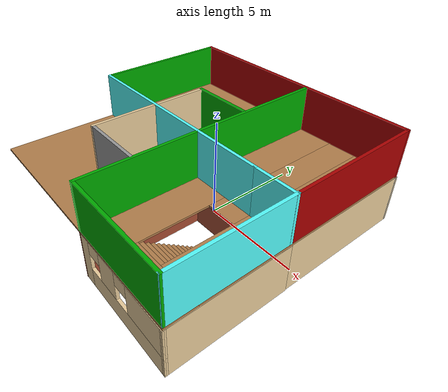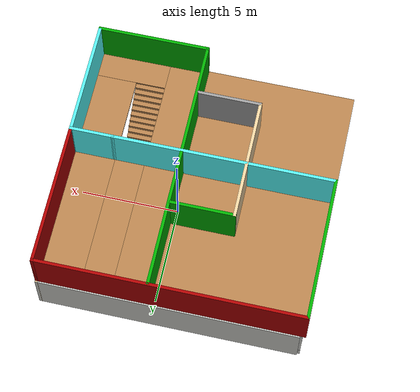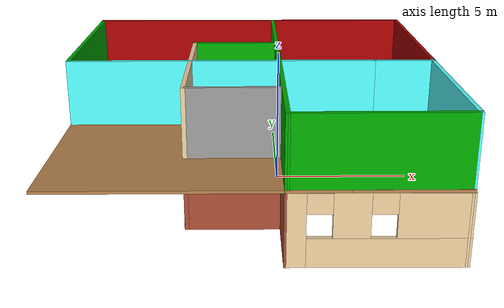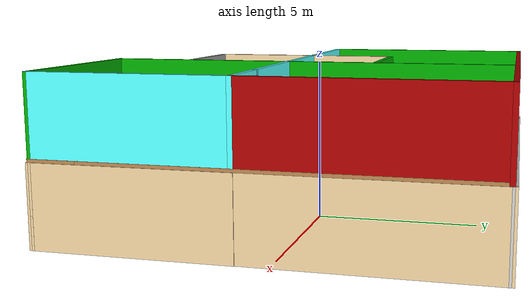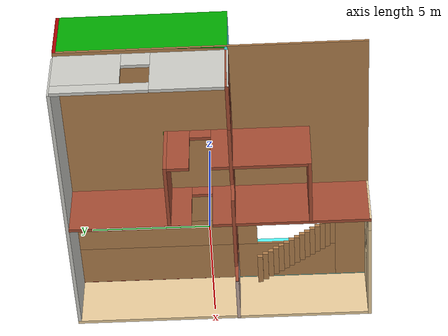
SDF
<?xml version='1.0'?>
<sdf version='1.6'>
  <model name='robot_house'>
    <pose frame=''>-0.926845 -0.383706 0 0 -0 0</pose>
    <link name='Floor_4'>
      <pose frame=''>-0.094655 -0.015382 2.5 0 -0 0</pose>
      <visual name='Floor_4_Visual_0'>
        <pose frame=''>-1.84399 0 0.05 0 -0 0</pose>
        <geometry>
          <box>
            <size>9.5793 13.0701 0.1</size>
          </box>
        </geometry>
        <material>
          <script>
            <uri>file://media/materials/scripts/gazebo.material</uri>
            <name>Gazebo/Wood</name>
          </script>
          <ambient>1 0.764706 0.305882 1</ambient>
        </material>
      </visual>
      <collision name='Floor_4_Collision_0'>
        <geometry>
          <box>
            <size>9.5793 13.0701 0.1</size>
          </box>
        </geometry>
        <pose frame=''>-1.84399 0 0.05 0 -0 0</pose>
      </collision>
      <visual name='Floor_4_Visual_1'>
        <pose frame=''>4.78965 -5.80852 0.05 0 -0 0</pose>
        <geometry>
          <box>
            <size>3.68799 1.4531 0.1</size>
          </box>
        </geometry>
        <material>
          <script>
            <uri>file://media/materials/scripts/gazebo.material</uri>
            <name>Gazebo/Wood</name>
          </script>
          <ambient>1 0.764706 0.305882 1</ambient>
        </material>
      </visual>
      <collision name='Floor_4_Collision_1'>
        <geometry>
          <box>
            <size>3.68799 1.4531 0.1</size>
          </box>
        </geometry>
        <pose frame=''>4.78965 -5.80852 0.05 0 -0 0</pose>
      </collision>
      <visual name='Floor_4_Visual_2'>
        <pose frame=''>5.53965 0.726551 0.05 0 -0 0</pose>
        <geometry>
          <box>
            <size>2.18799 11.617 0.1</size>
          </box>
        </geometry>
        <material>
          <script>
            <uri>file://media/materials/scripts/gazebo.material</uri>
            <name>Gazebo/Wood</name>
          </script>
          <ambient>1 0.764706 0.305882 1</ambient>
        </material>
      </visual>
      <collision name='Floor_4_Collision_2'>
        <geometry>
          <box>
            <size>2.18799 11.617 0.1</size>
          </box>
        </geometry>
        <pose frame=''>5.53965 0.726551 0.05 0 -0 0</pose>
      </collision>
      <visual name='Floor_4_Visual_3'>
        <pose frame=''>3.69566 2.47655 0.05 0 -0 0</pose>
        <geometry>
          <box>
            <size>1.5 8.11703 0.1</size>
          </box>
        </geometry>
        <material>
          <script>
            <uri>file://media/materials/scripts/gazebo.material</uri>
            <name>Gazebo/Wood</name>
          </script>
          <ambient>1 0.764706 0.305882 1</ambient>
        </material>
      </visual>
      <collision name='Floor_4_Collision_3'>
        <geometry>
          <box>
            <size>1.5 8.11703 0.1</size>
          </box>
        </geometry>
        <pose frame=''>3.69566 2.47655 0.05 0 -0 0</pose>
      </collision>
    </link>
    <link name='Stairs_2'>
      <visual name='Stairs_2_Visual_0'>
        <pose frame=''>3.601 -1.71401 0.083333 0 -0 0</pose>
        <geometry>
          <box>
            <size>1.5 0.233333 0.166667</size>
          </box>
        </geometry>
        <material>
          <script>
            <uri>file://media/materials/scripts/gazebo.material</uri>
            <name>Gazebo/Wood</name>
          </script>
          <ambient>1 0.764706 0.305882 1</ambient>
        </material>
      </visual>
      <collision name='Stairs_2_Collision_0'>
        <geometry>
          <box>
            <size>1.5 0.233333 0.166667</size>
          </box>
        </geometry>
        <pose frame=''>3.601 -1.71401 0.083333 0 -0 0</pose>
      </collision>
      <visual name='Stairs_2_Visual_1'>
        <pose frame=''>3.601 -1.94735 0.25 0 -0 0</pose>
        <geometry>
          <box>
            <size>1.5 0.233333 0.166667</size>
          </box>
        </geometry>
        <material>
          <script>
            <uri>file://media/materials/scripts/gazebo.material</uri>
            <name>Gazebo/Wood</name>
          </script>
          <ambient>1 0.764706 0.305882 1</ambient>
        </material>
      </visual>
      <collision name='Stairs_2_Collision_1'>
        <geometry>
          <box>
            <size>1.5 0.233333 0.166667</size>
          </box>
        </geometry>
        <pose frame=''>3.601 -1.94735 0.25 0 -0 0</pose>
      </collision>
      <visual name='Stairs_2_Visual_2'>
        <pose frame=''>3.601 -2.18068 0.416667 0 -0 0</pose>
        <geometry>
          <box>
            <size>1.5 0.233333 0.166667</size>
          </box>
        </geometry>
        <material>
          <script>
            <uri>file://media/materials/scripts/gazebo.material</uri>
            <name>Gazebo/Wood</name>
          </script>
          <ambient>1 0.764706 0.305882 1</ambient>
        </material>
      </visual>
      <collision name='Stairs_2_Collision_2'>
        <geometry>
          <box>
            <size>1.5 0.233333 0.166667</size>
          </box>
        </geometry>
        <pose frame=''>3.601 -2.18068 0.416667 0 -0 0</pose>
      </collision>
      <visual name='Stairs_2_Visual_3'>
        <pose frame=''>3.601 -2.41401 0.583333 0 -0 0</pose>
        <geometry>
          <box>
            <size>1.5 0.233333 0.166667</size>
          </box>
        </geometry>
        <material>
          <script>
            <uri>file://media/materials/scripts/gazebo.material</uri>
            <name>Gazebo/Wood</name>
          </script>
          <ambient>1 0.764706 0.305882 1</ambient>
        </material>
      </visual>
      <collision name='Stairs_2_Collision_3'>
        <geometry>
          <box>
            <size>1.5 0.233333 0.166667</size>
          </box>
        </geometry>
        <pose frame=''>3.601 -2.41401 0.583333 0 -0 0</pose>
      </collision>
      <visual name='Stairs_2_Visual_4'>
        <pose frame=''>3.601 -2.64735 0.75 0 -0 0</pose>
        <geometry>
          <box>
            <size>1.5 0.233333 0.166667</size>
          </box>
        </geometry>
        <material>
          <script>
            <uri>file://media/materials/scripts/gazebo.material</uri>
            <name>Gazebo/Wood</name>
          </script>
          <ambient>1 0.764706 0.305882 1</ambient>
        </material>
      </visual>
      <collision name='Stairs_2_Collision_4'>
        <geometry>
          <box>
            <size>1.5 0.233333 0.166667</size>
          </box>
        </geometry>
        <pose frame=''>3.601 -2.64735 0.75 0 -0 0</pose>
      </collision>
      <visual name='Stairs_2_Visual_5'>
        <pose frame=''>3.601 -2.88068 0.916667 0 -0 0</pose>
        <geometry>
          <box>
            <size>1.5 0.233333 0.166667</size>
          </box>
        </geometry>
        <material>
          <script>
            <uri>file://media/materials/scripts/gazebo.material</uri>
            <name>Gazebo/Wood</name>
          </script>
          <ambient>1 0.764706 0.305882 1</ambient>
        </material>
      </visual>
      <collision name='Stairs_2_Collision_5'>
        <geometry>
          <box>
            <size>1.5 0.233333 0.166667</size>
          </box>
        </geometry>
        <pose frame=''>3.601 -2.88068 0.916667 0 -0 0</pose>
      </collision>
      <visual name='Stairs_2_Visual_6'>
        <pose frame=''>3.601 -3.11401 1.08333 0 -0 0</pose>
        <geometry>
          <box>
            <size>1.5 0.233333 0.166667</size>
          </box>
        </geometry>
        <material>
          <script>
            <uri>file://media/materials/scripts/gazebo.material</uri>
            <name>Gazebo/Wood</name>
          </script>
          <ambient>1 0.764706 0.305882 1</ambient>
        </material>
      </visual>
      <collision name='Stairs_2_Collision_6'>
        <geometry>
          <box>
            <size>1.5 0.233333 0.166667</size>
          </box>
        </geometry>
        <pose frame=''>3.601 -3.11401 1.08333 0 -0 0</pose>
      </collision>
      <visual name='Stairs_2_Visual_7'>
        <pose frame=''>3.601 -3.34735 1.25 0 -0 0</pose>
        <geometry>
          <box>
            <size>1.5 0.233333 0.166667</size>
          </box>
        </geometry>
        <material>
          <script>
            <uri>file://media/materials/scripts/gazebo.material</uri>
            <name>Gazebo/Wood</name>
          </script>
          <ambient>1 0.764706 0.305882 1</ambient>
        </material>
      </visual>
      <collision name='Stairs_2_Collision_7'>
        <geometry>
          <box>
            <size>1.5 0.233333 0.166667</size>
          </box>
        </geometry>
        <pose frame=''>3.601 -3.34735 1.25 0 -0 0</pose>
      </collision>
      <visual name='Stairs_2_Visual_8'>
        <pose frame=''>3.601 -3.58068 1.41667 0 -0 0</pose>
        <geometry>
          <box>
            <size>1.5 0.233333 0.166667</size>
          </box>
        </geometry>
        <material>
          <script>
            <uri>file://media/materials/scripts/gazebo.material</uri>
            <name>Gazebo/Wood</name>
          </script>
          <ambient>1 0.764706 0.305882 1</ambient>
        </material>
      </visual>
      <collision name='Stairs_2_Collision_8'>
        <geometry>
          <box>
            <size>1.5 0.233333 0.166667</size>
          </box>
        </geometry>
        <pose frame=''>3.601 -3.58068 1.41667 0 -0 0</pose>
      </collision>
      <visual name='Stairs_2_Visual_9'>
        <pose frame=''>3.601 -3.81401 1.58333 0 -0 0</pose>
        <geometry>
          <box>
            <size>1.5 0.233333 0.166667</size>
          </box>
        </geometry>
        <material>
          <script>
            <uri>file://media/materials/scripts/gazebo.material</uri>
            <name>Gazebo/Wood</name>
          </script>
          <ambient>1 0.764706 0.305882 1</ambient>
        </material>
      </visual>
      <collision name='Stairs_2_Collision_9'>
        <geometry>
          <box>
            <size>1.5 0.233333 0.166667</size>
          </box>
        </geometry>
        <pose frame=''>3.601 -3.81401 1.58333 0 -0 0</pose>
      </collision>
      <visual name='Stairs_2_Visual_10'>
        <pose frame=''>3.601 -4.04735 1.75 0 -0 0</pose>
        <geometry>
          <box>
            <size>1.5 0.233333 0.166667</size>
          </box>
        </geometry>
        <material>
          <script>
            <uri>file://media/materials/scripts/gazebo.material</uri>
            <name>Gazebo/Wood</name>
          </script>
          <ambient>1 0.764706 0.305882 1</ambient>
        </material>
      </visual>
      <collision name='Stairs_2_Collision_10'>
        <geometry>
          <box>
            <size>1.5 0.233333 0.166667</size>
          </box>
        </geometry>
        <pose frame=''>3.601 -4.04735 1.75 0 -0 0</pose>
      </collision>
      <visual name='Stairs_2_Visual_11'>
        <pose frame=''>3.601 -4.28068 1.91667 0 -0 0</pose>
        <geometry>
          <box>
            <size>1.5 0.233333 0.166667</size>
          </box>
        </geometry>
        <material>
          <script>
            <uri>file://media/materials/scripts/gazebo.material</uri>
            <name>Gazebo/Wood</name>
          </script>
          <ambient>1 0.764706 0.305882 1</ambient>
        </material>
      </visual>
      <collision name='Stairs_2_Collision_11'>
        <geometry>
          <box>
            <size>1.5 0.233333 0.166667</size>
          </box>
        </geometry>
        <pose frame=''>3.601 -4.28068 1.91667 0 -0 0</pose>
      </collision>
      <visual name='Stairs_2_Visual_12'>
        <pose frame=''>3.601 -4.51401 2.08333 0 -0 0</pose>
        <geometry>
          <box>
            <size>1.5 0.233333 0.166667</size>
          </box>
        </geometry>
        <material>
          <script>
            <uri>file://media/materials/scripts/gazebo.material</uri>
            <name>Gazebo/Wood</name>
          </script>
          <ambient>1 0.764706 0.305882 1</ambient>
        </material>
      </visual>
      <collision name='Stairs_2_Collision_12'>
        <geometry>
          <box>
            <size>1.5 0.233333 0.166667</size>
          </box>
        </geometry>
        <pose frame=''>3.601 -4.51401 2.08333 0 -0 0</pose>
      </collision>
      <visual name='Stairs_2_Visual_13'>
        <pose frame=''>3.601 -4.74735 2.25 0 -0 0</pose>
        <geometry>
          <box>
            <size>1.5 0.233333 0.166667</size>
          </box>
        </geometry>
        <material>
          <script>
            <uri>file://media/materials/scripts/gazebo.material</uri>
            <name>Gazebo/Wood</name>
          </script>
          <ambient>1 0.764706 0.305882 1</ambient>
        </material>
      </visual>
      <collision name='Stairs_2_Collision_13'>
        <geometry>
          <box>
            <size>1.5 0.233333 0.166667</size>
          </box>
        </geometry>
        <pose frame=''>3.601 -4.74735 2.25 0 -0 0</pose>
      </collision>
      <visual name='Stairs_2_Visual_14'>
        <pose frame=''>3.601 -4.98068 2.41667 0 -0 0</pose>
        <geometry>
          <box>
            <size>1.5 0.233333 0.166667</size>
          </box>
        </geometry>
        <material>
          <script>
            <uri>file://media/materials/scripts/gazebo.material</uri>
            <name>Gazebo/Wood</name>
          </script>
          <ambient>1 0.764706 0.305882 1</ambient>
        </material>
      </visual>
      <collision name='Stairs_2_Collision_14'>
        <geometry>
          <box>
            <size>1.5 0.233333 0.166667</size>
          </box>
        </geometry>
        <pose frame=''>3.601 -4.98068 2.41667 0 -0 0</pose>
      </collision>
    </link>
    <link name='Wall_0'>
      <collision name='Wall_0_Collision'>
        <geometry>
          <box>
            <size>13 0.15 2.5</size>
          </box>
        </geometry>
        <pose frame=''>0 0 1.25 0 -0 0</pose>
      </collision>
      <visual name='Wall_0_Visual'>
        <pose frame=''>0 0 1.25 0 -0 0</pose>
        <geometry>
          <box>
            <size>13 0.15 2.5</size>
          </box>
        </geometry>
        <material>
          <script>
            <uri>file://media/materials/scripts/gazebo.material</uri>
            <name>Gazebo/CeilingTiled</name>
          </script>
          <ambient>0.435294 0.796078 0.67451 1</ambient>
        </material>
      </visual>
      <pose frame=''>0.054845 6.50971 0 0 -0 0</pose>
    </link>
    <link name='Wall_1'>
      <collision name='Wall_1_Collision'>
        <geometry>
          <box>
            <size>7.31477 0.15 2.5</size>
          </box>
        </geometry>
        <pose frame=''>0 0 1.25 0 -0 0</pose>
      </collision>
      <visual name='Wall_1_Visual'>
        <pose frame=''>0 0 1.25 0 -0 0</pose>
        <geometry>
          <box>
            <size>7.31477 0.15 2.5</size>
          </box>
        </geometry>
        <material>
          <script>
            <uri>file://media/materials/scripts/gazebo.material</uri>
            <name>Gazebo/Grey</name>
          </script>
          <ambient>0.921569 0.807843 0.615686 1</ambient>
        </material>
      </visual>
      <pose frame=''>6.47185 2.92721 0 0 0 -1.57303</pose>
    </link>
    <link name='Wall_11'>
      <pose frame=''>-1.06116 -0.670294 0 0 0 -3.13883</pose>
      <visual name='Wall_11_Visual_0'>
        <pose frame=''>-5.40921 0 1.25 0 -0 0</pose>
        <geometry>
          <box>
            <size>0.18158 0.15 2.5</size>
          </box>
        </geometry>
        <material>
          <script>
            <uri>file://media/materials/scripts/gazebo.material</uri>
            <name>Gazebo/Bricks</name>
          </script>
          <ambient>1 1 1 1</ambient>
        </material>
      </visual>
      <collision name='Wall_11_Collision_0'>
        <geometry>
          <box>
            <size>0.18158 0.15 2.5</size>
          </box>
        </geometry>
        <pose frame=''>-5.40921 0 1.25 0 -0 0</pose>
      </collision>
      <visual name='Wall_11_Visual_1'>
        <pose frame=''>-2.50114 0 1.25 0 -0 0</pose>
        <geometry>
          <box>
            <size>3.83457 0.15 2.5</size>
          </box>
        </geometry>
        <material>
          <script>
            <uri>file://media/materials/scripts/gazebo.material</uri>
            <name>Gazebo/Bricks</name>
          </script>
          <ambient>1 1 1 1</ambient>
        </material>
      </visual>
      <collision name='Wall_11_Collision_1'>
        <geometry>
          <box>
            <size>3.83457 0.15 2.5</size>
          </box>
        </geometry>
        <pose frame=''>-2.50114 0 1.25 0 -0 0</pose>
      </collision>
      <visual name='Wall_11_Visual_2'>
        <pose frame=''>1.79358 0 1.25 0 -0 0</pose>
        <geometry>
          <box>
            <size>2.95487 0.15 2.5</size>
          </box>
        </geometry>
        <material>
          <script>
            <uri>file://media/materials/scripts/gazebo.material</uri>
            <name>Gazebo/Bricks</name>
          </script>
          <ambient>1 1 1 1</ambient>
        </material>
      </visual>
      <collision name='Wall_11_Collision_2'>
        <geometry>
          <box>
            <size>2.95487 0.15 2.5</size>
          </box>
        </geometry>
        <pose frame=''>1.79358 0 1.25 0 -0 0</pose>
      </collision>
      <visual name='Wall_11_Visual_3'>
        <pose frame=''>4.38551 0 0.25 0 -0 0</pose>
        <geometry>
          <box>
            <size>2.22898 0.15 0.5</size>
          </box>
        </geometry>
        <material>
          <script>
            <uri>file://media/materials/scripts/gazebo.material</uri>
            <name>Gazebo/Bricks</name>
          </script>
          <ambient>1 1 1 1</ambient>
        </material>
      </visual>
      <collision name='Wall_11_Collision_3'>
        <geometry>
          <box>
            <size>2.22898 0.15 0.5</size>
          </box>
        </geometry>
        <pose frame=''>4.38551 0 0.25 0 -0 0</pose>
      </collision>
      <visual name='Wall_11_Visual_4'>
        <pose frame=''>4.78551 0 1.5 0 -0 0</pose>
        <geometry>
          <box>
            <size>1.42898 0.15 2</size>
          </box>
        </geometry>
        <material>
          <script>
            <uri>file://media/materials/scripts/gazebo.material</uri>
            <name>Gazebo/Bricks</name>
          </script>
          <ambient>1 1 1 1</ambient>
        </material>
      </visual>
      <collision name='Wall_11_Collision_4'>
        <geometry>
          <box>
            <size>1.42898 0.15 2</size>
          </box>
        </geometry>
        <pose frame=''>4.78551 0 1.5 0 -0 0</pose>
      </collision>
      <visual name='Wall_11_Visual_5'>
        <pose frame=''>3.67102 0 1.9 0 -0 0</pose>
        <geometry>
          <box>
            <size>0.8 0.15 1.2</size>
          </box>
        </geometry>
        <material>
          <script>
            <uri>file://media/materials/scripts/gazebo.material</uri>
            <name>Gazebo/Bricks</name>
          </script>
          <ambient>1 1 1 1</ambient>
        </material>
      </visual>
      <collision name='Wall_11_Collision_5'>
        <geometry>
          <box>
            <size>0.8 0.15 1.2</size>
          </box>
        </geometry>
        <pose frame=''>3.67102 0 1.9 0 -0 0</pose>
      </collision>
      <visual name='Wall_11_Visual_6'>
        <pose frame=''>-4.86842 0 2.25 0 -0 0</pose>
        <geometry>
          <box>
            <size>0.9 0.15 0.5</size>
          </box>
        </geometry>
        <material>
          <script>
            <uri>file://media/materials/scripts/gazebo.material</uri>
            <name>Gazebo/Bricks</name>
          </script>
          <ambient>1 1 1 1</ambient>
        </material>
      </visual>
      <collision name='Wall_11_Collision_6'>
        <geometry>
          <box>
            <size>0.9 0.15 0.5</size>
          </box>
        </geometry>
        <pose frame=''>-4.86842 0 2.25 0 -0 0</pose>
      </collision>
      <visual name='Wall_11_Visual_7'>
        <pose frame=''>-0.133852 0 2.25 0 -0 0</pose>
        <geometry>
          <box>
            <size>0.9 0.15 0.5</size>
          </box>
        </geometry>
        <material>
          <script>
            <uri>file://media/materials/scripts/gazebo.material</uri>
            <name>Gazebo/Bricks</name>
          </script>
          <ambient>1 1 1 1</ambient>
        </material>
      </visual>
      <collision name='Wall_11_Collision_7'>
        <geometry>
          <box>
            <size>0.9 0.15 0.5</size>
          </box>
        </geometry>
        <pose frame=''>-0.133852 0 2.25 0 -0 0</pose>
      </collision>
    </link>
    <link name='Wall_12'>
      <pose frame=''>-6.48616 2.86471 0 0 -0 1.5708</pose>
      <visual name='Wall_12_Visual_0'>
        <pose frame=''>-2.01463 0 1.25 0 -0 0</pose>
        <geometry>
          <box>
            <size>3.22099 0.15 2.5</size>
          </box>
        </geometry>
        <material>
          <script>
            <uri>file://media/materials/scripts/gazebo.material</uri>
            <name>Gazebo/CeilingTiled</name>
          </script>
          <ambient>0.435294 0.796078 0.67451 1</ambient>
        </material>
      </visual>
      <collision name='Wall_12_Collision_0'>
        <geometry>
          <box>
            <size>3.22099 0.15 2.5</size>
          </box>
        </geometry>
        <pose frame=''>-2.01463 0 1.25 0 -0 0</pose>
      </collision>
      <visual name='Wall_12_Visual_1'>
        <pose frame=''>1.61049 0 0.25 0 -0 0</pose>
        <geometry>
          <box>
            <size>4.02926 0.15 0.5</size>
          </box>
        </geometry>
        <material>
          <script>
            <uri>file://media/materials/scripts/gazebo.material</uri>
            <name>Gazebo/CeilingTiled</name>
          </script>
          <ambient>0.435294 0.796078 0.67451 1</ambient>
        </material>
      </visual>
      <collision name='Wall_12_Collision_1'>
        <geometry>
          <box>
            <size>4.02926 0.15 0.5</size>
          </box>
        </geometry>
        <pose frame=''>1.61049 0 0.25 0 -0 0</pose>
      </collision>
      <visual name='Wall_12_Visual_2'>
        <pose frame=''>2.21049 0 1.5 0 -0 0</pose>
        <geometry>
          <box>
            <size>2.82926 0.15 2</size>
          </box>
        </geometry>
        <material>
          <script>
            <uri>file://media/materials/scripts/gazebo.material</uri>
            <name>Gazebo/CeilingTiled</name>
          </script>
          <ambient>0.435294 0.796078 0.67451 1</ambient>
        </material>
      </visual>
      <collision name='Wall_12_Collision_2'>
        <geometry>
          <box>
            <size>2.82926 0.15 2</size>
          </box>
        </geometry>
        <pose frame=''>2.21049 0 1.5 0 -0 0</pose>
      </collision>
      <visual name='Wall_12_Visual_3'>
        <pose frame=''>0.195865 0 2.1 0 -0 0</pose>
        <geometry>
          <box>
            <size>1.2 0.15 0.8</size>
          </box>
        </geometry>
        <material>
          <script>
            <uri>file://media/materials/scripts/gazebo.material</uri>
            <name>Gazebo/CeilingTiled</name>
          </script>
          <ambient>0.435294 0.796078 0.67451 1</ambient>
        </material>
      </visual>
      <collision name='Wall_12_Collision_3'>
        <geometry>
          <box>
            <size>1.2 0.15 0.8</size>
          </box>
        </geometry>
        <pose frame=''>0.195865 0 2.1 0 -0 0</pose>
      </collision>
    </link>
    <link name='Wall_25'>
      <collision name='Wall_25_Collision'>
        <geometry>
          <box>
            <size>3.25 0.15 2.5</size>
          </box>
        </geometry>
        <pose frame=''>0 0 1.25 0 -0 0</pose>
      </collision>
      <visual name='Wall_25_Visual'>
        <pose frame=''>0 0 1.25 0 -0 0</pose>
        <geometry>
          <box>
            <size>3.25 0.15 2.5</size>
          </box>
        </geometry>
        <material>
          <script>
            <uri>file://media/materials/scripts/gazebo.material</uri>
            <name>Gazebo/Bricks</name>
          </script>
          <ambient>1 1 1 1</ambient>
        </material>
      </visual>
      <pose frame=''>-0.736155 2.10871 0 0 -0 3.14159</pose>
    </link>
    <link name='Wall_26'>
      <pose frame=''>-2.28615 -0.926294 0 0 0 -1.5708</pose>
      <visual name='Wall_26_Visual_0'>
        <pose frame=''>-2.56068 0 1.25 0 -0 0</pose>
        <geometry>
          <box>
            <size>1.09864 0.15 2.5</size>
          </box>
        </geometry>
        <material>
          <script>
            <uri>file://media/materials/scripts/gazebo.material</uri>
            <name>Gazebo/Bricks</name>
          </script>
          <ambient>1 1 1 1</ambient>
        </material>
      </visual>
      <collision name='Wall_26_Collision_0'>
        <geometry>
          <box>
            <size>1.09864 0.15 2.5</size>
          </box>
        </geometry>
        <pose frame=''>-2.56068 0 1.25 0 -0 0</pose>
      </collision>
      <visual name='Wall_26_Visual_1'>
        <pose frame=''>0.999317 0 1.25 0 -0 0</pose>
        <geometry>
          <box>
            <size>4.22136 0.15 2.5</size>
          </box>
        </geometry>
        <material>
          <script>
            <uri>file://media/materials/scripts/gazebo.material</uri>
            <name>Gazebo/Bricks</name>
          </script>
          <ambient>1 1 1 1</ambient>
        </material>
      </visual>
      <collision name='Wall_26_Collision_1'>
        <geometry>
          <box>
            <size>4.22136 0.15 2.5</size>
          </box>
        </geometry>
        <pose frame=''>0.999317 0 1.25 0 -0 0</pose>
      </collision>
      <visual name='Wall_26_Visual_2'>
        <pose frame=''>-1.56136 0 2.25 0 -0 0</pose>
        <geometry>
          <box>
            <size>0.9 0.15 0.5</size>
          </box>
        </geometry>
        <material>
          <script>
            <uri>file://media/materials/scripts/gazebo.material</uri>
            <name>Gazebo/Bricks</name>
          </script>
          <ambient>1 1 1 1</ambient>
        </material>
      </visual>
      <collision name='Wall_26_Collision_2'>
        <geometry>
          <box>
            <size>0.9 0.15 0.5</size>
          </box>
        </geometry>
        <pose frame=''>-1.56136 0 2.25 0 -0 0</pose>
      </collision>
    </link>
    <link name='Wall_27'>
      <collision name='Wall_27_Collision'>
        <geometry>
          <box>
            <size>3.25 0.15 2.5</size>
          </box>
        </geometry>
        <pose frame=''>0 0 1.25 0 -0 0</pose>
      </collision>
      <visual name='Wall_27_Visual'>
        <pose frame=''>0 0 1.25 0 -0 0</pose>
        <geometry>
          <box>
            <size>3.25 0.15 2.5</size>
          </box>
        </geometry>
        <material>
          <script>
            <uri>file://media/materials/scripts/gazebo.material</uri>
            <name>Gazebo/Bricks</name>
          </script>
          <ambient>1 1 1 1</ambient>
        </material>
      </visual>
      <pose frame=''>-0.736155 -3.96129 0 0 -0 0</pose>
    </link>
    <link name='Wall_4'>
      <collision name='Wall_4_Collision'>
        <geometry>
          <box>
            <size>2.25 0.15 2.5</size>
          </box>
        </geometry>
        <pose frame=''>0 0 1.25 0 -0 0</pose>
      </collision>
      <visual name='Wall_4_Visual'>
        <pose frame=''>0 0 1.25 0 -0 0</pose>
        <geometry>
          <box>
            <size>2.25 0.15 2.5</size>
          </box>
        </geometry>
        <material>
          <script>
            <uri>file://media/materials/scripts/gazebo.material</uri>
            <name>Gazebo/Grey</name>
          </script>
          <ambient>0.760784 0.662745 0.627451 1</ambient>
        </material>
      </visual>
      <pose frame=''>5.41385 -0.655294 0 0 -0 3.14159</pose>
    </link>
    <link name='Wall_65'>
      <collision name='Wall_65_Collision'>
        <geometry>
          <box>
            <size>13.2673 0.15 2.5</size>
          </box>
        </geometry>
        <pose frame=''>0 0 1.25 0 -0 0</pose>
      </collision>
      <visual name='Wall_65_Visual'>
        <pose frame=''>0 0 1.25 0 -0 0</pose>
        <geometry>
          <box>
            <size>13.2673 0.15 2.5</size>
          </box>
        </geometry>
        <material>
          <script>
            <uri>file://media/materials/scripts/gazebo.material</uri>
            <name>Gazebo/Grey</name>
          </script>
          <ambient>0.666667 0 0 1</ambient>
        </material>
      </visual>
      <pose frame=''>-0.094655 6.44471 2.5 0 -0 0</pose>
    </link>
    <link name='Wall_66'>
      <collision name='Wall_66_Collision'>
        <geometry>
          <box>
            <size>7.25 0.15 2.5</size>
          </box>
        </geometry>
        <pose frame=''>0 0 1.25 0 -0 0</pose>
      </collision>
      <visual name='Wall_66_Visual'>
        <pose frame=''>0 0 1.25 0 -0 0</pose>
        <geometry>
          <box>
            <size>7.25 0.15 2.5</size>
          </box>
        </geometry>
        <material>
          <script>
            <uri>file://media/materials/scripts/gazebo.material</uri>
            <name>Gazebo/Grey</name>
          </script>
          <ambient>0.666667 0 0 1</ambient>
        </material>
      </visual>
      <pose frame=''>6.46385 2.89471 2.5 0 0 -1.5708</pose>
    </link>
    <link name='Wall_67'>
      <collision name='Wall_67_Collision'>
        <geometry>
          <box>
            <size>2.25 0.15 2.5</size>
          </box>
        </geometry>
        <pose frame=''>0 0 1.25 0 -0 0</pose>
      </collision>
      <visual name='Wall_67_Visual'>
        <pose frame=''>0 0 1.25 0 -0 0</pose>
        <geometry>
          <box>
            <size>2.25 0.15 2.5</size>
          </box>
        </geometry>
        <material>
          <script>
            <uri>file://media/materials/scripts/gazebo.material</uri>
            <name>Gazebo/Grey</name>
          </script>
          <ambient>0.333333 1 1 1</ambient>
        </material>
      </visual>
      <pose frame=''>5.41385 -0.655294 2.5 0 -0 3.14159</pose>
    </link>
    <link name='Wall_68'>
      <collision name='Wall_68_Collision'>
        <geometry>
          <box>
            <size>13 0.15 2.5</size>
          </box>
        </geometry>
        <pose frame=''>0 0 1.25 0 -0 0</pose>
      </collision>
      <visual name='Wall_68_Visual'>
        <pose frame=''>0 0 1.25 0 -0 0</pose>
        <geometry>
          <box>
            <size>13 0.15 2.5</size>
          </box>
        </geometry>
        <material>
          <script>
            <uri>file://media/materials/scripts/gazebo.material</uri>
            <name>Gazebo/Grey</name>
          </script>
          <ambient>0 0.666667 0 1</ambient>
        </material>
      </visual>
      <pose frame=''>0.919845 -0.050294 2.5 0 0 -1.5708</pose>
    </link>
    <link name='Wall_69'>
      <collision name='Wall_69_Collision'>
        <geometry>
          <box>
            <size>5.68919 0.15 2.5</size>
          </box>
        </geometry>
        <pose frame=''>0 0 1.25 0 -0 0</pose>
      </collision>
      <visual name='Wall_69_Visual'>
        <pose frame=''>0 0 1.25 0 -0 0</pose>
        <geometry>
          <box>
            <size>5.68919 0.15 2.5</size>
          </box>
        </geometry>
        <material>
          <script>
            <uri>file://media/materials/scripts/gazebo.material</uri>
            <name>Gazebo/Grey</name>
          </script>
          <ambient>0 0.666667 0 1</ambient>
        </material>
      </visual>
      <pose frame=''>3.68934 -6.46879 2.5 0 -0 0.002347</pose>
    </link>
    <link name='Wall_7'>
      <pose frame=''>0.919845 -0.050294 0 0 0 -1.5708</pose>
      <visual name='Wall_7_Visual_0'>
        <pose frame=''>-3.85534 0 1.25 0 -0 0</pose>
        <geometry>
          <box>
            <size>5.28932 0.15 2.5</size>
          </box>
        </geometry>
        <material>
          <script>
            <uri>file://media/materials/scripts/gazebo.material</uri>
            <name>Gazebo/Bricks</name>
          </script>
          <ambient>1 1 1 1</ambient>
        </material>
      </visual>
      <collision name='Wall_7_Collision_0'>
        <geometry>
          <box>
            <size>5.28932 0.15 2.5</size>
          </box>
        </geometry>
        <pose frame=''>-3.85534 0 1.25 0 -0 0</pose>
      </collision>
      <visual name='Wall_7_Visual_1'>
        <pose frame=''>3.09466 0 1.25 0 -0 0</pose>
        <geometry>
          <box>
            <size>6.81068 0.15 2.5</size>
          </box>
        </geometry>
        <material>
          <script>
            <uri>file://media/materials/scripts/gazebo.material</uri>
            <name>Gazebo/Bricks</name>
          </script>
          <ambient>1 1 1 1</ambient>
        </material>
      </visual>
      <collision name='Wall_7_Collision_1'>
        <geometry>
          <box>
            <size>6.81068 0.15 2.5</size>
          </box>
        </geometry>
        <pose frame=''>3.09466 0 1.25 0 -0 0</pose>
      </collision>
      <visual name='Wall_7_Visual_2'>
        <pose frame=''>-0.760679 0 2.25 0 -0 0</pose>
        <geometry>
          <box>
            <size>0.9 0.15 0.5</size>
          </box>
        </geometry>
        <material>
          <script>
            <uri>file://media/materials/scripts/gazebo.material</uri>
            <name>Gazebo/Bricks</name>
          </script>
          <ambient>1 1 1 1</ambient>
        </material>
      </visual>
      <collision name='Wall_7_Collision_2'>
        <geometry>
          <box>
            <size>0.9 0.15 0.5</size>
          </box>
        </geometry>
        <pose frame=''>-0.760679 0 2.25 0 -0 0</pose>
      </collision>
    </link>
    <link name='Wall_70'>
      <collision name='Wall_70_Collision'>
        <geometry>
          <box>
            <size>6 0.15 2.5</size>
          </box>
        </geometry>
        <pose frame=''>0 0 1.25 0 -0 0</pose>
      </collision>
      <visual name='Wall_70_Visual'>
        <pose frame=''>0 0 1.25 0 -0 0</pose>
        <geometry>
          <box>
            <size>6 0.15 2.5</size>
          </box>
        </geometry>
        <material>
          <script>
            <uri>file://media/materials/scripts/gazebo.material</uri>
            <name>Gazebo/Grey</name>
          </script>
          <ambient>0.333333 1 1 1</ambient>
        </material>
      </visual>
      <pose frame=''>6.45885 -3.53729 2.5 0 -0 1.5708</pose>
    </link>
    <link name='Wall_71'>
      <collision name='Wall_71_Collision'>
        <geometry>
          <box>
            <size>11.163 0.15 2.5</size>
          </box>
        </geometry>
        <pose frame=''>0 0 1.25 0 -0 0</pose>
      </collision>
      <visual name='Wall_71_Visual'>
        <pose frame=''>0 0 1.25 0 -0 0</pose>
        <geometry>
          <box>
            <size>11.163 0.15 2.5</size>
          </box>
        </geometry>
        <material>
          <script>
            <uri>file://media/materials/scripts/gazebo.material</uri>
            <name>Gazebo/Grey</name>
          </script>
          <ambient>0.333333 1 1 1</ambient>
        </material>
      </visual>
      <pose frame=''>-1.14265 -0.657294 2.5 0 0 -3.14123</pose>
    </link>
    <link name='Wall_72'>
      <collision name='Wall_72_Collision'>
        <geometry>
          <box>
            <size>7.25 0.15 2.5</size>
          </box>
        </geometry>
        <pose frame=''>0 0 1.25 0 -0 0</pose>
      </collision>
      <visual name='Wall_72_Visual'>
        <pose frame=''>0 0 1.25 0 -0 0</pose>
        <geometry>
          <box>
            <size>7.25 0.15 2.5</size>
          </box>
        </geometry>
        <material>
          <script>
            <uri>file://media/materials/scripts/gazebo.material</uri>
            <name>Gazebo/Grey</name>
          </script>
          <ambient>0 0.666667 0 1</ambient>
        </material>
      </visual>
      <pose frame=''>-6.64936 2.8912 2.5 0 -0 1.57085</pose>
    </link>
    <link name='Wall_74'>
      <collision name='Wall_74_Collision'>
        <geometry>
          <box>
            <size>3.25 0.15 2.5</size>
          </box>
        </geometry>
        <pose frame=''>0 0 1.25 0 -0 0</pose>
      </collision>
      <visual name='Wall_74_Visual'>
        <pose frame=''>0 0 1.25 0 -0 0</pose>
        <geometry>
          <box>
            <size>3.25 0.15 2.5</size>
          </box>
        </geometry>
        <material>
          <script>
            <uri>file://media/materials/scripts/gazebo.material</uri>
            <name>Gazebo/Grey</name>
          </script>
          <ambient>0 0.666667 0 1</ambient>
        </material>
      </visual>
      <pose frame=''>-0.736155 2.13871 2.5 0 -0 3.14159</pose>
    </link>
    <link name='Wall_75'>
      <collision name='Wall_75_Collision'>
        <geometry>
          <box>
            <size>6.25 0.15 2.5</size>
          </box>
        </geometry>
        <pose frame=''>0 0 1.25 0 -0 0</pose>
      </collision>
      <visual name='Wall_75_Visual'>
        <pose frame=''>0 0 1.25 0 -0 0</pose>
        <geometry>
          <box>
            <size>6.25 0.15 2.5</size>
          </box>
        </geometry>
        <material>
          <script>
            <uri>file://media/materials/scripts/gazebo.material</uri>
            <name>Gazebo/Grey</name>
          </script>
          <ambient>0.921569 0.807843 0.615686 1</ambient>
        </material>
      </visual>
      <pose frame=''>-2.28615 -0.911294 2.5 0 0 -1.5708</pose>
    </link>
    <link name='Wall_76'>
      <collision name='Wall_76_Collision'>
        <geometry>
          <box>
            <size>3.25 0.15 2.5</size>
          </box>
        </geometry>
        <pose frame=''>0 0 1.25 0 -0 0</pose>
      </collision>
      <visual name='Wall_76_Visual'>
        <pose frame=''>0 0 1.25 0 -0 0</pose>
        <geometry>
          <box>
            <size>3.25 0.15 2.5</size>
          </box>
        </geometry>
        <material>
          <script>
            <uri>file://media/materials/scripts/gazebo.material</uri>
            <name>Gazebo/Grey</name>
          </script>
          <ambient>1 1 1 1</ambient>
        </material>
      </visual>
      <pose frame=''>-0.735961 -3.9613 2.5 0 0 -6e-06</pose>
    </link>
    <link name='Wall_8'>
      <pose frame=''>3.70284 -6.49229 0 0 0 -0.006108</pose>
      <visual name='Wall_8_Visual_0'>
        <pose frame=''>-2.52282 0 1.25 0 -0 0</pose>
        <geometry>
          <box>
            <size>0.670534 0.15 2.5</size>
          </box>
        </geometry>
        <material>
          <script>
            <uri>file://media/materials/scripts/gazebo.material</uri>
            <name>Gazebo/Grey</name>
          </script>
          <ambient>0.921569 0.807843 0.615686 1</ambient>
        </material>
      </visual>
      <collision name='Wall_8_Collision_0'>
        <geometry>
          <box>
            <size>0.670534 0.15 2.5</size>
          </box>
        </geometry>
        <pose frame=''>-2.52282 0 1.25 0 -0 0</pose>
      </collision>
      <visual name='Wall_8_Visual_1'>
        <pose frame=''>0.335267 0 0.5 0 -0 0</pose>
        <geometry>
          <box>
            <size>5.04565 0.15 1</size>
          </box>
        </geometry>
        <material>
          <script>
            <uri>file://media/materials/scripts/gazebo.material</uri>
            <name>Gazebo/Grey</name>
          </script>
          <ambient>0.921569 0.807843 0.615686 1</ambient>
        </material>
      </visual>
      <collision name='Wall_8_Collision_1'>
        <geometry>
          <box>
            <size>5.04565 0.15 1</size>
          </box>
        </geometry>
        <pose frame=''>0.335267 0 0.5 0 -0 0</pose>
      </collision>
      <visual name='Wall_8_Visual_2'>
        <pose frame=''>-0.810654 0 1.75 0 -0 0</pose>
        <geometry>
          <box>
            <size>1.15381 0.15 1.5</size>
          </box>
        </geometry>
        <material>
          <script>
            <uri>file://media/materials/scripts/gazebo.material</uri>
            <name>Gazebo/Grey</name>
          </script>
          <ambient>0.921569 0.807843 0.615686 1</ambient>
        </material>
      </visual>
      <collision name='Wall_8_Collision_2'>
        <geometry>
          <box>
            <size>1.15381 0.15 1.5</size>
          </box>
        </geometry>
        <pose frame=''>-0.810654 0 1.75 0 -0 0</pose>
      </collision>
      <visual name='Wall_8_Visual_3'>
        <pose frame=''>1.71217 0 1.75 0 -0 0</pose>
        <geometry>
          <box>
            <size>2.29184 0.15 1.5</size>
          </box>
        </geometry>
        <material>
          <script>
            <uri>file://media/materials/scripts/gazebo.material</uri>
            <name>Gazebo/Grey</name>
          </script>
          <ambient>0.921569 0.807843 0.615686 1</ambient>
        </material>
      </visual>
      <collision name='Wall_8_Collision_3'>
        <geometry>
          <box>
            <size>2.29184 0.15 1.5</size>
          </box>
        </geometry>
        <pose frame=''>1.71217 0 1.75 0 -0 0</pose>
      </collision>
      <visual name='Wall_8_Visual_4'>
        <pose frame=''>-1.78756 0 2.15 0 -0 0</pose>
        <geometry>
          <box>
            <size>0.8 0.15 0.7</size>
          </box>
        </geometry>
        <material>
          <script>
            <uri>file://media/materials/scripts/gazebo.material</uri>
            <name>Gazebo/Grey</name>
          </script>
          <ambient>0.921569 0.807843 0.615686 1</ambient>
        </material>
      </visual>
      <collision name='Wall_8_Collision_4'>
        <geometry>
          <box>
            <size>0.8 0.15 0.7</size>
          </box>
        </geometry>
        <pose frame=''>-1.78756 0 2.15 0 -0 0</pose>
      </collision>
      <visual name='Wall_8_Visual_5'>
        <pose frame=''>0.16625 0 2.15 0 -0 0</pose>
        <geometry>
          <box>
            <size>0.8 0.15 0.7</size>
          </box>
        </geometry>
        <material>
          <script>
            <uri>file://media/materials/scripts/gazebo.material</uri>
            <name>Gazebo/Grey</name>
          </script>
          <ambient>0.921569 0.807843 0.615686 1</ambient>
        </material>
      </visual>
      <collision name='Wall_8_Collision_5'>
        <geometry>
          <box>
            <size>0.8 0.15 0.7</size>
          </box>
        </geometry>
        <pose frame=''>0.16625 0 2.15 0 -0 0</pose>
      </collision>
    </link>
    <link name='Wall_9'>
      <collision name='Wall_9_Collision'>
        <geometry>
          <box>
            <size>6 0.15 2.5</size>
          </box>
        </geometry>
        <pose frame=''>0 0 1.25 0 -0 0</pose>
      </collision>
      <visual name='Wall_9_Visual'>
        <pose frame=''>0 0 1.25 0 -0 0</pose>
        <geometry>
          <box>
            <size>6 0.15 2.5</size>
          </box>
        </geometry>
        <material>
          <script>
            <uri>file://media/materials/scripts/gazebo.material</uri>
            <name>Gazebo/Grey</name>
          </script>
          <ambient>0.921569 0.807843 0.615686 1</ambient>
        </material>
      </visual>
      <pose frame=''>6.48585 -3.58429 0 0 -0 1.5708</pose>
    </link>
    <static>1</static>
  </model>
</sdf>
